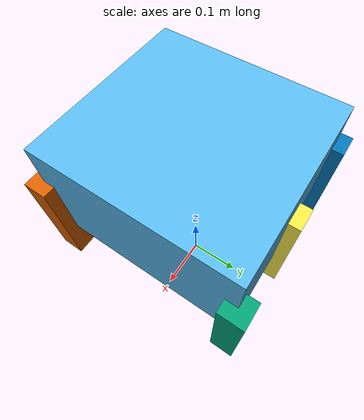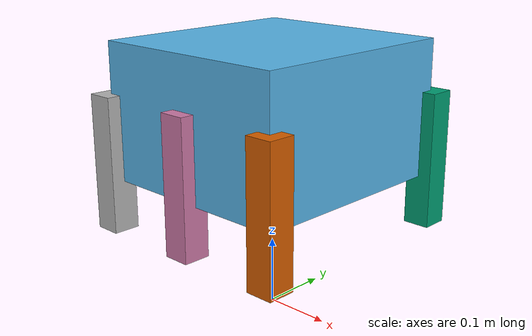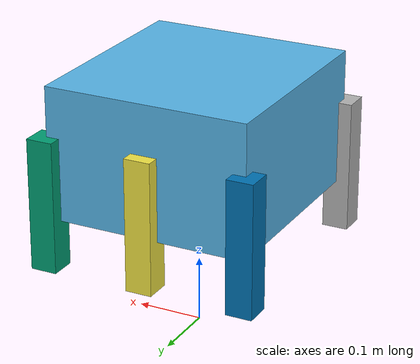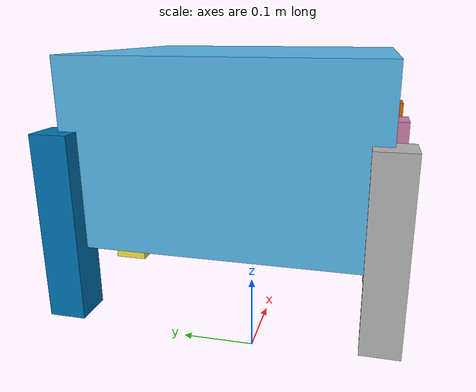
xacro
<?xml version="1.0"?>

<robot name="rover">
    <link name="base_link"></link>
    <link name="base_part">
        <visual>
            <origin rpy="0 0 0" xyz="0 0 0"></origin>
            <geometry>
                <box size="0.31 0.33 0.20"></box>
            </geometry>
        </visual>
        <collision>
            <origin rpy="0 0 0" xyz="0 0 0"></origin>
            <geometry>
                <box size="0.31 0.33 0.20"></box>
            </geometry>
        </collision>
    </link>

    <link name="leg1_link">
        <visual>
            <origin rpy="0 0 0" xyz="0 0 -0.075"></origin>
            <geometry>
                <box size="0.04 0.04 0.20"></box>
            </geometry>
        </visual>
    </link>

    <link name="leg2_link">
        <visual>
            <origin rpy="0 0 0" xyz="0 0 -0.075"></origin>
            <geometry>
                <box size="0.04 0.04 0.20"></box>
            </geometry>
        </visual>
    </link>

    <link name="leg3_link">
        <visual>
            <origin rpy="0 0 0" xyz="0 0 -0.075"></origin>
            <geometry>
                <box size="0.04 0.04 0.20"></box>
            </geometry>
        </visual>
    </link>

    <link name="leg4_link">
        <visual>
            <origin rpy="0 0 0" xyz="0 0 -0.075"></origin>
            <geometry>
                <box size="0.04 0.04 0.20"></box>
            </geometry>
        </visual>
    </link>

    <link name="leg5_link">
        <visual>
            <origin rpy="0 0 0" xyz="0 0 -0.075"></origin>
            <geometry>
                <box size="0.04 0.04 0.20"></box>
            </geometry>
        </visual>
    </link>

    <link name="leg6_link">
        <visual>
            <origin rpy="0 0 0" xyz="0 0 -0.075"></origin>
            <geometry>
                <box size="0.04 0.04 0.20"></box>
            </geometry>
        </visual>
    </link>

    <joint name="base_part_joint" type="fixed">
        <origin rpy="0 0 0" xyz="0 0 0.3" ></origin>
        <parent link="base_link"></parent>
        <child link="base_part"></child>
    </joint>

    <joint name="leg1_joint" type="fixed">
        <origin rpy="0 0 0" xyz="0.155 0.165 0"></origin>
        <parent link="base_part"></parent>
        <child link="leg1_link"></child>
    </joint>

    <joint name="leg2_joint" type="fixed">
        <origin rpy="0 0 0" xyz="0 0.165 0"></origin>
        <parent link="base_part"></parent>
        <child link="leg2_link"></child>
    </joint>

    <joint name="leg3_joint" type="fixed">
        <origin rpy="0 0 0" xyz="-0.155 0.165 0"></origin>
        <parent link="base_part"></parent>
        <child link="leg3_link"></child>
    </joint>
    <joint name="leg4_joint" type="fixed">
        <origin rpy="0 0 0" xyz="0.155 -0.165 0"></origin>
        <parent link="base_part"></parent>
        <child link="leg4_link"></child>
    </joint>

    <joint name="leg5_joint" type="fixed">
        <origin rpy="0 0 0" xyz="0 -0.165 0"></origin>
        <parent link="base_part"></parent>
        <child link="leg5_link"></child>
    </joint>

    <joint name="leg6_joint" type="fixed">
        <origin rpy="0 0 0" xyz="-0.155 -0.165 0"></origin>
        <parent link="base_part"></parent>
        <child link="leg6_link"></child>
    </joint>

</robot>
